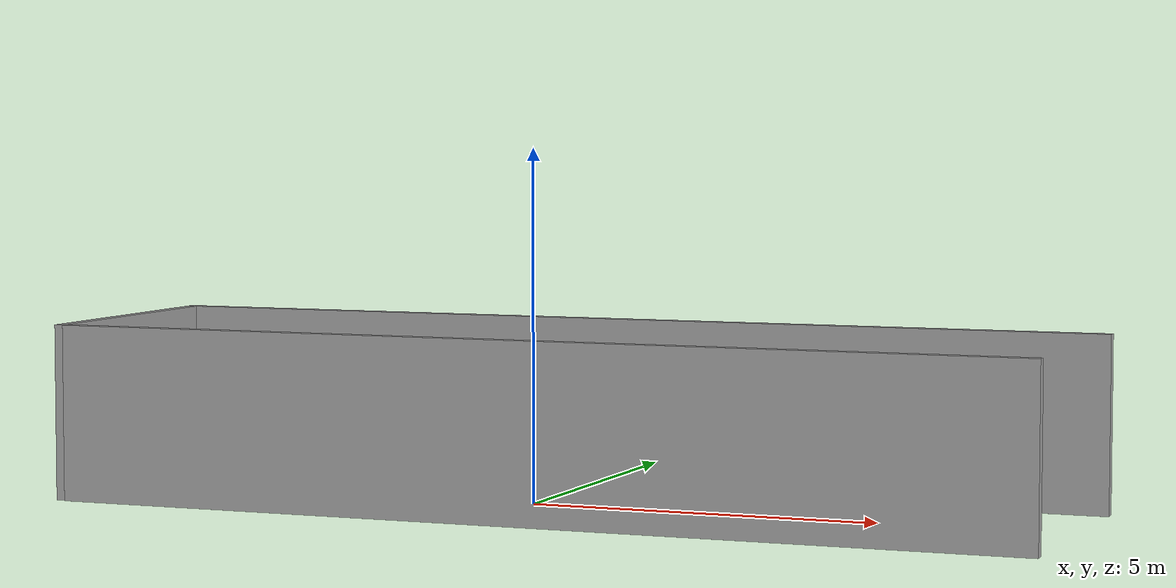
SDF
<?xml version='1.0'?>
<sdf version='1.7'>
  <model name='rajattu'>
    <pose>0.648719 -0.119715 0 0 -0 0</pose>
    <link name='Wall_2'>
      <collision name='Wall_2_Collision'>
        <geometry>
          <box>
            <size>14 0.15 2.5</size>
          </box>
        </geometry>
        <pose>0 0 1.25 0 -0 0</pose>
      </collision>
      <visual name='Wall_2_Visual'>
        <pose>0 0 1.25 0 -0 0</pose>
        <geometry>
          <box>
            <size>14 0.15 2.5</size>
          </box>
        </geometry>
        <material>
          <script>
            <uri>file://media/materials/scripts/gazebo.material</uri>
            <name>Gazebo/Grey</name>
          </script>
          <ambient>1 1 1 1</ambient>
        </material>
        <meta>
          <layer>0</layer>
        </meta>
      </visual>
      <pose>0.021261 -1.94271 0 0 -0 0</pose>
    </link>
    <link name='Wall_7'>
      <collision name='Wall_7_Collision'>
        <geometry>
          <box>
            <size>14.25 0.15 2.5</size>
          </box>
        </geometry>
        <pose>0 0 1.25 0 -0 0</pose>
      </collision>
      <visual name='Wall_7_Visual'>
        <pose>0 0 1.25 0 -0 0</pose>
        <geometry>
          <box>
            <size>14.25 0.15 2.5</size>
          </box>
        </geometry>
        <material>
          <script>
            <uri>file://media/materials/scripts/gazebo.material</uri>
            <name>Gazebo/Grey</name>
          </script>
          <ambient>1 1 1 1</ambient>
        </material>
        <meta>
          <layer>0</layer>
        </meta>
      </visual>
      <pose>0 1.94271 0 0 -0 0</pose>
    </link>
    <link name='Wall_9'>
      <collision name='Wall_9_Collision'>
        <geometry>
          <box>
            <size>4 0.15 2.5</size>
          </box>
        </geometry>
        <pose>0 0 1.25 0 -0 0</pose>
      </collision>
      <visual name='Wall_9_Visual'>
        <pose>0 0 1.25 0 -0 0</pose>
        <geometry>
          <box>
            <size>4 0.15 2.5</size>
          </box>
        </geometry>
        <material>
          <script>
            <uri>file://media/materials/scripts/gazebo.material</uri>
            <name>Gazebo/Grey</name>
          </script>
          <ambient>1 1 1 1</ambient>
        </material>
        <meta>
          <layer>0</layer>
        </meta>
      </visual>
      <pose>-7.05 0.017715 0 0 -0 -1.5708</pose>
    </link>
    <static>1</static>
  </model>
</sdf>
